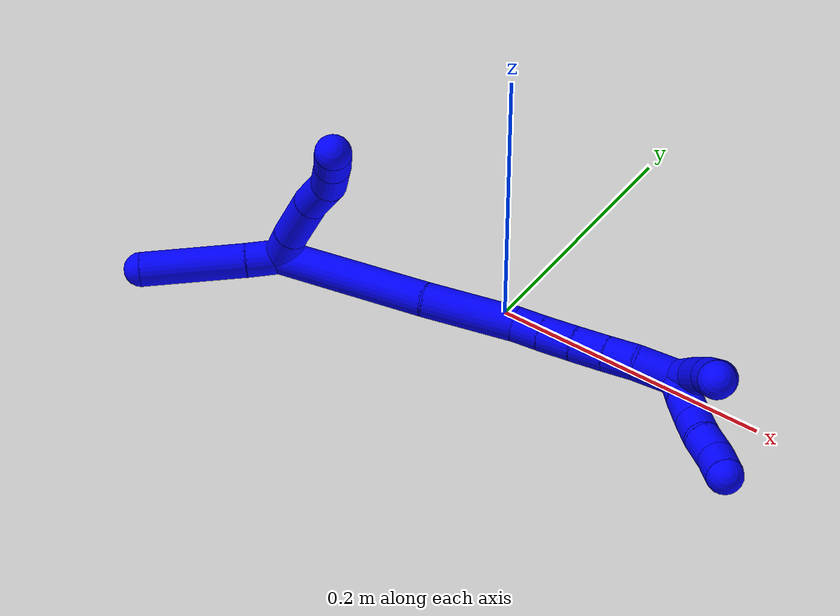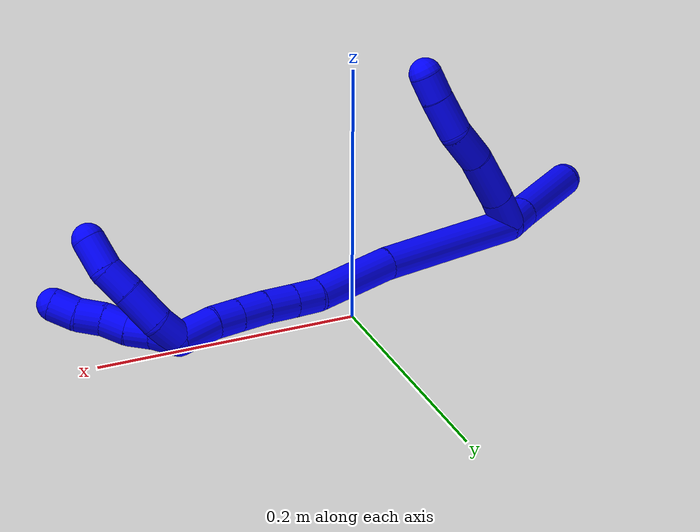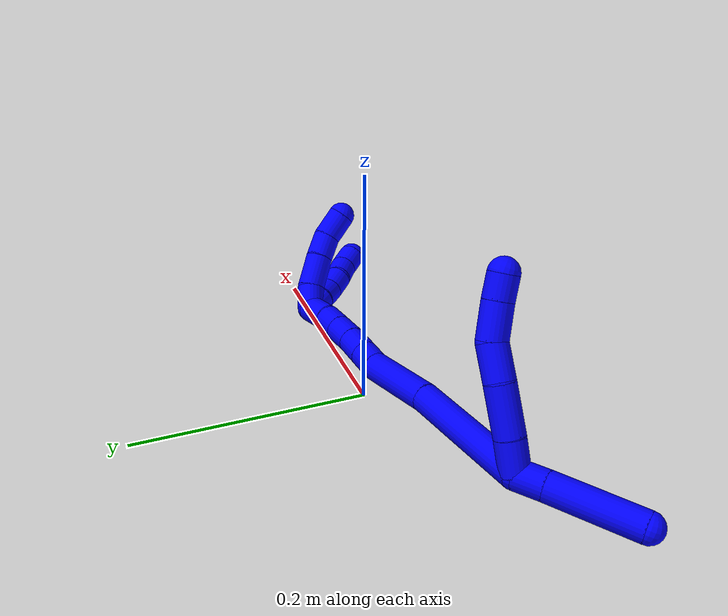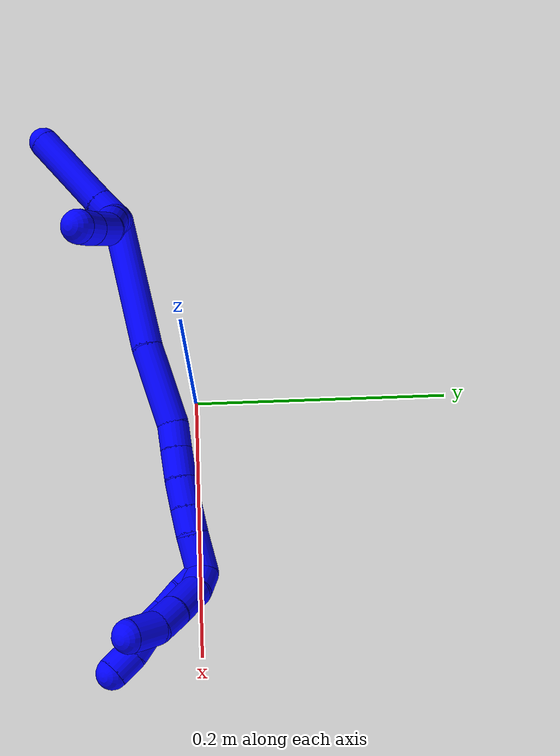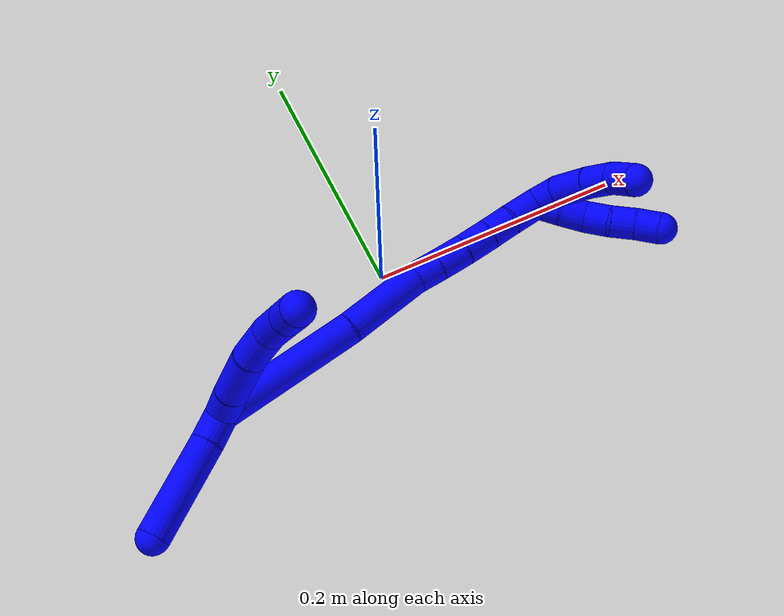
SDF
<sdf version="1.7">
 <world name="default">
  <model name="1">
   <static>0</static>
   <link name="1">
    <collision name="collision-cylinder-e_1_2_8">
     <pose>0.001639 0.006868 0.012306 -0.509071 0.11575 -0.030147</pose>
     <geometry><cylinder><radius>0.0125</radius><length>0.028375</length></cylinder></geometry>
     <surface>
      <friction><ode><mu>1.16</mu><mu2>1.16</mu2><slip1>0</slip1><slip2>0</slip2></ode></friction>
      <contact><ode><kp>1e+06</kp><kd>1</kd><max_vel>0</max_vel><min_depth>0.001</min_depth></ode></contact>
     </surface>
    </collision>
    <visual name="visual-cylinder-e_1_2_8">
     <pose>0.001639 0.006868 0.012306 -0.509071 0.11575 -0.030147</pose>
     <geometry><cylinder><radius>0.0125</radius><length>0.028375</length></cylinder></geometry>
     <material><ambient>0 0 1 1</ambient></material>
    </visual>
    <collision name="collision-cylinder-e_2_8_9">
     <pose>0.007035 0.02364 0.042337 -0.509504 0.183021 -0.047785</pose>
     <geometry><cylinder><radius>0.0125</radius><length>0.0413</length></cylinder></geometry>
     <surface>
      <friction><ode><mu>1.16</mu><mu2>1.16</mu2><slip1>0</slip1><slip2>0</slip2></ode></friction>
      <contact><ode><kp>1e+06</kp><kd>1</kd><max_vel>0</max_vel><min_depth>0.001</min_depth></ode></contact>
     </surface>
    </collision>
    <visual name="visual-cylinder-e_2_8_9">
     <pose>0.007035 0.02364 0.042337 -0.509504 0.183021 -0.047785</pose>
     <geometry><cylinder><radius>0.0125</radius><length>0.0413</length></cylinder></geometry>
     <material><ambient>0 0 1 1</ambient></material>
    </visual>
    <collision name="collision-cylinder-e_3_9_10">
     <pose>0.015413 0.039676 0.072849 -0.44719 0.314896 -0.072173</pose>
     <geometry><cylinder><radius>0.0125</radius><length>0.029828</length></cylinder></geometry>
     <surface>
      <friction><ode><mu>1.16</mu><mu2>1.16</mu2><slip1>0</slip1><slip2>0</slip2></ode></friction>
      <contact><ode><kp>1e+06</kp><kd>1</kd><max_vel>0</max_vel><min_depth>0.001</min_depth></ode></contact>
     </surface>
    </collision>
    <visual name="visual-cylinder-e_3_9_10">
     <pose>0.015413 0.039676 0.072849 -0.44719 0.314896 -0.072173</pose>
     <geometry><cylinder><radius>0.0125</radius><length>0.029828</length></cylinder></geometry>
     <material><ambient>0 0 1 1</ambient></material>
    </visual>
    <collision name="collision-cylinder-e_4_10_11">
     <pose>0.02132 0.0486 0.100367 -0.187309 0.08571 -0.008056</pose>
     <geometry><cylinder><radius>0.0125</radius><length>0.030099</length></cylinder></geometry>
     <surface>
      <friction><ode><mu>1.16</mu><mu2>1.16</mu2><slip1>0</slip1><slip2>0</slip2></ode></friction>
      <contact><ode><kp>1e+06</kp><kd>1</kd><max_vel>0</max_vel><min_depth>0.001</min_depth></ode></contact>
     </surface>
    </collision>
    <visual name="visual-cylinder-e_4_10_11">
     <pose>0.02132 0.0486 0.100367 -0.187309 0.08571 -0.008056</pose>
     <geometry><cylinder><radius>0.0125</radius><length>0.030099</length></cylinder></geometry>
     <material><ambient>0 0 1 1</ambient></material>
    </visual>
    <collision name="collision-cylinder-e_5_11_6">
     <pose>0.022838 0.053003 0.125168 -0.158618 0.022529 -0.001791</pose>
     <geometry><cylinder><radius>0.0125</radius><length>0.020398</length></cylinder></geometry>
     <surface>
      <friction><ode><mu>1.16</mu><mu2>1.16</mu2><slip1>0</slip1><slip2>0</slip2></ode></friction>
      <contact><ode><kp>1e+06</kp><kd>1</kd><max_vel>0</max_vel><min_depth>0.001</min_depth></ode></contact>
     </surface>
    </collision>
    <visual name="visual-cylinder-e_5_11_6">
     <pose>0.022838 0.053003 0.125168 -0.158618 0.022529 -0.001791</pose>
     <geometry><cylinder><radius>0.0125</radius><length>0.020398</length></cylinder></geometry>
     <material><ambient>0 0 1 1</ambient></material>
    </visual>
    <collision name="collision-cylinder-e_1_2_12">
     <pose>-0.009104 -0.007955 0.000461 1.51294 -0.851848 -0.80912</pose>
     <geometry><cylinder><radius>0.0125</radius><length>0.024197</length></cylinder></geometry>
     <surface>
      <friction><ode><mu>1.16</mu><mu2>1.16</mu2><slip1>0</slip1><slip2>0</slip2></ode></friction>
      <contact><ode><kp>1e+06</kp><kd>1</kd><max_vel>0</max_vel><min_depth>0.001</min_depth></ode></contact>
     </surface>
    </collision>
    <visual name="visual-cylinder-e_1_2_12">
     <pose>-0.009104 -0.007955 0.000461 1.51294 -0.851848 -0.80912</pose>
     <geometry><cylinder><radius>0.0125</radius><length>0.024197</length></cylinder></geometry>
     <material><ambient>0 0 1 1</ambient></material>
    </visual>
    <collision name="collision-cylinder-e_2_12_5">
     <pose>-0.047569 -0.03987 0.001497 1.5468 -0.886204 -0.867754</pose>
     <geometry><cylinder><radius>0.0125</radius><length>0.075803</length></cylinder></geometry>
     <surface>
      <friction><ode><mu>1.16</mu><mu2>1.16</mu2><slip1>0</slip1><slip2>0</slip2></ode></friction>
      <contact><ode><kp>1e+06</kp><kd>1</kd><max_vel>0</max_vel><min_depth>0.001</min_depth></ode></contact>
     </surface>
    </collision>
    <visual name="visual-cylinder-e_2_12_5">
     <pose>-0.047569 -0.03987 0.001497 1.5468 -0.886204 -0.867754</pose>
     <geometry><cylinder><radius>0.0125</radius><length>0.075803</length></cylinder></geometry>
     <material><ambient>0 0 1 1</ambient></material>
    </visual>
    <collision name="collision-cylinder-e_1_2_13">
     <pose>0.054178 0.013986 0.010826 -0.912072 1.25526 -0.683787</pose>
     <geometry><cylinder><radius>0.0125</radius><length>0.113983</length></cylinder></geometry>
     <surface>
      <friction><ode><mu>1.16</mu><mu2>1.16</mu2><slip1>0</slip1><slip2>0</slip2></ode></friction>
      <contact><ode><kp>1e+06</kp><kd>1</kd><max_vel>0</max_vel><min_depth>0.001</min_depth></ode></contact>
     </surface>
    </collision>
    <visual name="visual-cylinder-e_1_2_13">
     <pose>0.054178 0.013986 0.010826 -0.912072 1.25526 -0.683787</pose>
     <geometry><cylinder><radius>0.0125</radius><length>0.113983</length></cylinder></geometry>
     <material><ambient>0 0 1 1</ambient></material>
    </visual>
    <collision name="collision-cylinder-e_2_13_14">
     <pose>0.139994 0.037735 0.024725 -1.26583 1.25789 -0.980467</pose>
     <geometry><cylinder><radius>0.0125</radius><length>0.066505</length></cylinder></geometry>
     <surface>
      <friction><ode><mu>1.16</mu><mu2>1.16</mu2><slip1>0</slip1><slip2>0</slip2></ode></friction>
      <contact><ode><kp>1e+06</kp><kd>1</kd><max_vel>0</max_vel><min_depth>0.001</min_depth></ode></contact>
     </surface>
    </collision>
    <visual name="visual-cylinder-e_2_13_14">
     <pose>0.139994 0.037735 0.024725 -1.26583 1.25789 -0.980467</pose>
     <geometry><cylinder><radius>0.0125</radius><length>0.066505</length></cylinder></geometry>
     <material><ambient>0 0 1 1</ambient></material>
    </visual>
    <collision name="collision-cylinder-e_3_14_15">
     <pose>0.181547 0.049343 0.030476 -0.603149 1.25392 -0.443304</pose>
     <geometry><cylinder><radius>0.0125</radius><length>0.020869</length></cylinder></geometry>
     <surface>
      <friction><ode><mu>1.16</mu><mu2>1.16</mu2><slip1>0</slip1><slip2>0</slip2></ode></friction>
      <contact><ode><kp>1e+06</kp><kd>1</kd><max_vel>0</max_vel><min_depth>0.001</min_depth></ode></contact>
     </surface>
    </collision>
    <visual name="visual-cylinder-e_3_14_15">
     <pose>0.181547 0.049343 0.030476 -0.603149 1.25392 -0.443304</pose>
     <geometry><cylinder><radius>0.0125</radius><length>0.020869</length></cylinder></geometry>
     <material><ambient>0 0 1 1</ambient></material>
    </visual>
    <collision name="collision-cylinder-e_4_15_16">
     <pose>0.202755 0.053561 0.036363 -0.636906 1.23104 -0.458087</pose>
     <geometry><cylinder><radius>0.0125</radius><length>0.023958</length></cylinder></geometry>
     <surface>
      <friction><ode><mu>1.16</mu><mu2>1.16</mu2><slip1>0</slip1><slip2>0</slip2></ode></friction>
      <contact><ode><kp>1e+06</kp><kd>1</kd><max_vel>0</max_vel><min_depth>0.001</min_depth></ode></contact>
     </surface>
    </collision>
    <visual name="visual-cylinder-e_4_15_16">
     <pose>0.202755 0.053561 0.036363 -0.636906 1.23104 -0.458087</pose>
     <geometry><cylinder><radius>0.0125</radius><length>0.023958</length></cylinder></geometry>
     <material><ambient>0 0 1 1</ambient></material>
    </visual>
    <collision name="collision-cylinder-e_5_16_17">
     <pose>0.225191 0.058599 0.041999 -0.831969 1.25803 -0.622004</pose>
     <geometry><cylinder><radius>0.0125</radius><length>0.02342</length></cylinder></geometry>
     <surface>
      <friction><ode><mu>1.16</mu><mu2>1.16</mu2><slip1>0</slip1><slip2>0</slip2></ode></friction>
      <contact><ode><kp>1e+06</kp><kd>1</kd><max_vel>0</max_vel><min_depth>0.001</min_depth></ode></contact>
     </surface>
    </collision>
    <visual name="visual-cylinder-e_5_16_17">
     <pose>0.225191 0.058599 0.041999 -0.831969 1.25803 -0.622004</pose>
     <geometry><cylinder><radius>0.0125</radius><length>0.02342</length></cylinder></geometry>
     <material><ambient>0 0 1 1</ambient></material>
    </visual>
    <collision name="collision-cylinder-e_6_17_18">
     <pose>0.246286 0.063831 0.046574 -0.874297 1.24622 -0.647952</pose>
     <geometry><cylinder><radius>0.0125</radius><length>0.021003</length></cylinder></geometry>
     <surface>
      <friction><ode><mu>1.16</mu><mu2>1.16</mu2><slip1>0</slip1><slip2>0</slip2></ode></friction>
      <contact><ode><kp>1e+06</kp><kd>1</kd><max_vel>0</max_vel><min_depth>0.001</min_depth></ode></contact>
     </surface>
    </collision>
    <visual name="visual-cylinder-e_6_17_18">
     <pose>0.246286 0.063831 0.046574 -0.874297 1.24622 -0.647952</pose>
     <geometry><cylinder><radius>0.0125</radius><length>0.021003</length></cylinder></geometry>
     <material><ambient>0 0 1 1</ambient></material>
    </visual>
    <collision name="collision-cylinder-e_7_18_1">
     <pose>0.271007 0.069568 0.049634 -1.29063 1.35116 -1.0857</pose>
     <geometry><cylinder><radius>0.0125</radius><length>0.030263</length></cylinder></geometry>
     <surface>
      <friction><ode><mu>1.16</mu><mu2>1.16</mu2><slip1>0</slip1><slip2>0</slip2></ode></friction>
      <contact><ode><kp>1e+06</kp><kd>1</kd><max_vel>0</max_vel><min_depth>0.001</min_depth></ode></contact>
     </surface>
    </collision>
    <visual name="visual-cylinder-e_7_18_1">
     <pose>0.271007 0.069568 0.049634 -1.29063 1.35116 -1.0857</pose>
     <geometry><cylinder><radius>0.0125</radius><length>0.030263</length></cylinder></geometry>
     <material><ambient>0 0 1 1</ambient></material>
    </visual>
    <collision name="collision-cylinder-e_1_1_19">
     <pose>0.291535 0.06699 0.056359 0.779637 0.61378 0.258937</pose>
     <geometry><cylinder><radius>0.0125</radius><length>0.02</length></cylinder></geometry>
     <surface>
      <friction><ode><mu>1.16</mu><mu2>1.16</mu2><slip1>0</slip1><slip2>0</slip2></ode></friction>
      <contact><ode><kp>1e+06</kp><kd>1</kd><max_vel>0</max_vel><min_depth>0.001</min_depth></ode></contact>
     </surface>
    </collision>
    <visual name="visual-cylinder-e_1_1_19">
     <pose>0.291535 0.06699 0.056359 0.779637 0.61378 0.258937</pose>
     <geometry><cylinder><radius>0.0125</radius><length>0.02</length></cylinder></geometry>
     <material><ambient>0 0 1 1</ambient></material>
    </visual>
    <collision name="collision-cylinder-e_2_19_20">
     <pose>0.30391 0.055645 0.067163 0.842648 0.722859 0.335655</pose>
     <geometry><cylinder><radius>0.0125</radius><length>0.02</length></cylinder></geometry>
     <surface>
      <friction><ode><mu>1.16</mu><mu2>1.16</mu2><slip1>0</slip1><slip2>0</slip2></ode></friction>
      <contact><ode><kp>1e+06</kp><kd>1</kd><max_vel>0</max_vel><min_depth>0.001</min_depth></ode></contact>
     </surface>
    </collision>
    <visual name="visual-cylinder-e_2_19_20">
     <pose>0.30391 0.055645 0.067163 0.842648 0.722859 0.335655</pose>
     <geometry><cylinder><radius>0.0125</radius><length>0.02</length></cylinder></geometry>
     <material><ambient>0 0 1 1</ambient></material>
    </visual>
    <collision name="collision-cylinder-e_3_20_21">
     <pose>0.315986 0.045318 0.079068 0.599911 0.577697 0.1833</pose>
     <geometry><cylinder><radius>0.0125</radius><length>0.02</length></cylinder></geometry>
     <surface>
      <friction><ode><mu>1.16</mu><mu2>1.16</mu2><slip1>0</slip1><slip2>0</slip2></ode></friction>
      <contact><ode><kp>1e+06</kp><kd>1</kd><max_vel>0</max_vel><min_depth>0.001</min_depth></ode></contact>
     </surface>
    </collision>
    <visual name="visual-cylinder-e_3_20_21">
     <pose>0.315986 0.045318 0.079068 0.599911 0.577697 0.1833</pose>
     <geometry><cylinder><radius>0.0125</radius><length>0.02</length></cylinder></geometry>
     <material><ambient>0 0 1 1</ambient></material>
    </visual>
    <collision name="collision-cylinder-e_4_21_22">
     <pose>0.32856 0.036402 0.091629 0.638003 0.791345 0.274188</pose>
     <geometry><cylinder><radius>0.0125</radius><length>0.02</length></cylinder></geometry>
     <surface>
      <friction><ode><mu>1.16</mu><mu2>1.16</mu2><slip1>0</slip1><slip2>0</slip2></ode></friction>
      <contact><ode><kp>1e+06</kp><kd>1</kd><max_vel>0</max_vel><min_depth>0.001</min_depth></ode></contact>
     </surface>
    </collision>
    <visual name="visual-cylinder-e_4_21_22">
     <pose>0.32856 0.036402 0.091629 0.638003 0.791345 0.274188</pose>
     <geometry><cylinder><radius>0.0125</radius><length>0.02</length></cylinder></geometry>
     <material><ambient>0 0 1 1</ambient></material>
    </visual>
    <collision name="collision-cylinder-e_5_22_4">
     <pose>0.341027 0.027567 0.104326 0.582856 0.565049 0.173717</pose>
     <geometry><cylinder><radius>0.0125</radius><length>0.02</length></cylinder></geometry>
     <surface>
      <friction><ode><mu>1.16</mu><mu2>1.16</mu2><slip1>0</slip1><slip2>0</slip2></ode></friction>
      <contact><ode><kp>1e+06</kp><kd>1</kd><max_vel>0</max_vel><min_depth>0.001</min_depth></ode></contact>
     </surface>
    </collision>
    <visual name="visual-cylinder-e_5_22_4">
     <pose>0.341027 0.027567 0.104326 0.582856 0.565049 0.173717</pose>
     <geometry><cylinder><radius>0.0125</radius><length>0.02</length></cylinder></geometry>
     <material><ambient>0 0 1 1</ambient></material>
    </visual>
    <collision name="collision-cylinder-e_1_1_23">
     <pose>0.290469 0.074421 0.060008 -0.176147 0.454321 -0.040816</pose>
     <geometry><cylinder><radius>0.0125</radius><length>0.021392</length></cylinder></geometry>
     <surface>
      <friction><ode><mu>1.16</mu><mu2>1.16</mu2><slip1>0</slip1><slip2>0</slip2></ode></friction>
      <contact><ode><kp>1e+06</kp><kd>1</kd><max_vel>0</max_vel><min_depth>0.001</min_depth></ode></contact>
     </surface>
    </collision>
    <visual name="visual-cylinder-e_1_1_23">
     <pose>0.290469 0.074421 0.060008 -0.176147 0.454321 -0.040816</pose>
     <geometry><cylinder><radius>0.0125</radius><length>0.021392</length></cylinder></geometry>
     <material><ambient>0 0 1 1</ambient></material>
    </visual>
    <collision name="collision-cylinder-e_2_23_24">
     <pose>0.299482 0.075286 0.083963 0.056443 0.289151 0.00822</pose>
     <geometry><cylinder><radius>0.0125</radius><length>0.030291</length></cylinder></geometry>
     <surface>
      <friction><ode><mu>1.16</mu><mu2>1.16</mu2><slip1>0</slip1><slip2>0</slip2></ode></friction>
      <contact><ode><kp>1e+06</kp><kd>1</kd><max_vel>0</max_vel><min_depth>0.001</min_depth></ode></contact>
     </surface>
    </collision>
    <visual name="visual-cylinder-e_2_23_24">
     <pose>0.299482 0.075286 0.083963 0.056443 0.289151 0.00822</pose>
     <geometry><cylinder><radius>0.0125</radius><length>0.030291</length></cylinder></geometry>
     <material><ambient>0 0 1 1</ambient></material>
    </visual>
    <collision name="collision-cylinder-e_3_24_25">
     <pose>0.307174 0.072934 0.109227 0.141424 0.300715 0.021461</pose>
     <geometry><cylinder><radius>0.0125</radius><length>0.02278</length></cylinder></geometry>
     <surface>
      <friction><ode><mu>1.16</mu><mu2>1.16</mu2><slip1>0</slip1><slip2>0</slip2></ode></friction>
      <contact><ode><kp>1e+06</kp><kd>1</kd><max_vel>0</max_vel><min_depth>0.001</min_depth></ode></contact>
     </surface>
    </collision>
    <visual name="visual-cylinder-e_3_24_25">
     <pose>0.307174 0.072934 0.109227 0.141424 0.300715 0.021461</pose>
     <geometry><cylinder><radius>0.0125</radius><length>0.02278</length></cylinder></geometry>
     <material><ambient>0 0 1 1</ambient></material>
    </visual>
    <collision name="collision-cylinder-e_4_25_3">
     <pose>0.310449 0.067881 0.132271 0.27924 -0.007765 -0.001091</pose>
     <geometry><cylinder><radius>0.0125</radius><length>0.025537</length></cylinder></geometry>
     <surface>
      <friction><ode><mu>1.16</mu><mu2>1.16</mu2><slip1>0</slip1><slip2>0</slip2></ode></friction>
      <contact><ode><kp>1e+06</kp><kd>1</kd><max_vel>0</max_vel><min_depth>0.001</min_depth></ode></contact>
     </surface>
    </collision>
    <visual name="visual-cylinder-e_4_25_3">
     <pose>0.310449 0.067881 0.132271 0.27924 -0.007765 -0.001091</pose>
     <geometry><cylinder><radius>0.0125</radius><length>0.025537</length></cylinder></geometry>
     <material><ambient>0 0 1 1</ambient></material>
    </visual>
    <collision name="collision-sphere-3">
     <pose>0.310349 0.064362 0.144545 0 -0 0</pose>
     <geometry><sphere><radius>0.0125</radius></sphere></geometry>
     <surface>
      <friction><ode><mu>1.16</mu><mu2>1.16</mu2><slip1>0</slip1><slip2>0</slip2></ode></friction>
      <contact><ode><kp>1e+06</kp><kd>1</kd><max_vel>0</max_vel><min_depth>0.001</min_depth></ode></contact>
     </surface>
    </collision>
    <visual name="visual-sphere-3">
     <pose>0.310349 0.064362 0.144545 0 -0 0</pose>
     <geometry><sphere><radius>0.0125</radius></sphere></geometry>
     <material><ambient>0 0 1 1</ambient></material>
    </visual>
    <collision name="collision-sphere-25">
     <pose>0.310548 0.0714 0.119997 0 -0 0</pose>
     <geometry><sphere><radius>0.0125</radius></sphere></geometry>
     <surface>
      <friction><ode><mu>1.16</mu><mu2>1.16</mu2><slip1>0</slip1><slip2>0</slip2></ode></friction>
      <contact><ode><kp>1e+06</kp><kd>1</kd><max_vel>0</max_vel><min_depth>0.001</min_depth></ode></contact>
     </surface>
    </collision>
    <visual name="visual-sphere-25">
     <pose>0.310548 0.0714 0.119997 0 -0 0</pose>
     <geometry><sphere><radius>0.0125</radius></sphere></geometry>
     <material><ambient>0 0 1 1</ambient></material>
    </visual>
    <collision name="collision-sphere-24">
     <pose>0.3038 0.074467 0.098457 0 -0 0</pose>
     <geometry><sphere><radius>0.0125</radius></sphere></geometry>
     <surface>
      <friction><ode><mu>1.16</mu><mu2>1.16</mu2><slip1>0</slip1><slip2>0</slip2></ode></friction>
      <contact><ode><kp>1e+06</kp><kd>1</kd><max_vel>0</max_vel><min_depth>0.001</min_depth></ode></contact>
     </surface>
    </collision>
    <visual name="visual-sphere-24">
     <pose>0.3038 0.074467 0.098457 0 -0 0</pose>
     <geometry><sphere><radius>0.0125</radius></sphere></geometry>
     <material><ambient>0 0 1 1</ambient></material>
    </visual>
    <collision name="collision-sphere-23">
     <pose>0.295163 0.076105 0.06947 0 -0 0</pose>
     <geometry><sphere><radius>0.0125</radius></sphere></geometry>
     <surface>
      <friction><ode><mu>1.16</mu><mu2>1.16</mu2><slip1>0</slip1><slip2>0</slip2></ode></friction>
      <contact><ode><kp>1e+06</kp><kd>1</kd><max_vel>0</max_vel><min_depth>0.001</min_depth></ode></contact>
     </surface>
    </collision>
    <visual name="visual-sphere-23">
     <pose>0.295163 0.076105 0.06947 0 -0 0</pose>
     <geometry><sphere><radius>0.0125</radius></sphere></geometry>
     <material><ambient>0 0 1 1</ambient></material>
    </visual>
    <collision name="collision-sphere-4">
     <pose>0.346382 0.022919 0.111377 0 -0 0</pose>
     <geometry><sphere><radius>0.0125</radius></sphere></geometry>
     <surface>
      <friction><ode><mu>1.16</mu><mu2>1.16</mu2><slip1>0</slip1><slip2>0</slip2></ode></friction>
      <contact><ode><kp>1e+06</kp><kd>1</kd><max_vel>0</max_vel><min_depth>0.001</min_depth></ode></contact>
     </surface>
    </collision>
    <visual name="visual-sphere-4">
     <pose>0.346382 0.022919 0.111377 0 -0 0</pose>
     <geometry><sphere><radius>0.0125</radius></sphere></geometry>
     <material><ambient>0 0 1 1</ambient></material>
    </visual>
    <collision name="collision-sphere-22">
     <pose>0.335673 0.032216 0.097275 0 -0 0</pose>
     <geometry><sphere><radius>0.0125</radius></sphere></geometry>
     <surface>
      <friction><ode><mu>1.16</mu><mu2>1.16</mu2><slip1>0</slip1><slip2>0</slip2></ode></friction>
      <contact><ode><kp>1e+06</kp><kd>1</kd><max_vel>0</max_vel><min_depth>0.001</min_depth></ode></contact>
     </surface>
    </collision>
    <visual name="visual-sphere-22">
     <pose>0.335673 0.032216 0.097275 0 -0 0</pose>
     <geometry><sphere><radius>0.0125</radius></sphere></geometry>
     <material><ambient>0 0 1 1</ambient></material>
    </visual>
    <collision name="collision-sphere-21">
     <pose>0.321447 0.040589 0.085983 0 -0 0</pose>
     <geometry><sphere><radius>0.0125</radius></sphere></geometry>
     <surface>
      <friction><ode><mu>1.16</mu><mu2>1.16</mu2><slip1>0</slip1><slip2>0</slip2></ode></friction>
      <contact><ode><kp>1e+06</kp><kd>1</kd><max_vel>0</max_vel><min_depth>0.001</min_depth></ode></contact>
     </surface>
    </collision>
    <visual name="visual-sphere-21">
     <pose>0.321447 0.040589 0.085983 0 -0 0</pose>
     <geometry><sphere><radius>0.0125</radius></sphere></geometry>
     <material><ambient>0 0 1 1</ambient></material>
    </visual>
    <collision name="collision-sphere-20">
     <pose>0.310525 0.050048 0.072154 0 -0 0</pose>
     <geometry><sphere><radius>0.0125</radius></sphere></geometry>
     <surface>
      <friction><ode><mu>1.16</mu><mu2>1.16</mu2><slip1>0</slip1><slip2>0</slip2></ode></friction>
      <contact><ode><kp>1e+06</kp><kd>1</kd><max_vel>0</max_vel><min_depth>0.001</min_depth></ode></contact>
     </surface>
    </collision>
    <visual name="visual-sphere-20">
     <pose>0.310525 0.050048 0.072154 0 -0 0</pose>
     <geometry><sphere><radius>0.0125</radius></sphere></geometry>
     <material><ambient>0 0 1 1</ambient></material>
    </visual>
    <collision name="collision-sphere-6">
     <pose>0.023068 0.054614 0.135237 0 -0 0</pose>
     <geometry><sphere><radius>0.0125</radius></sphere></geometry>
     <surface>
      <friction><ode><mu>1.16</mu><mu2>1.16</mu2><slip1>0</slip1><slip2>0</slip2></ode></friction>
      <contact><ode><kp>1e+06</kp><kd>1</kd><max_vel>0</max_vel><min_depth>0.001</min_depth></ode></contact>
     </surface>
    </collision>
    <visual name="visual-sphere-6">
     <pose>0.023068 0.054614 0.135237 0 -0 0</pose>
     <geometry><sphere><radius>0.0125</radius></sphere></geometry>
     <material><ambient>0 0 1 1</ambient></material>
    </visual>
    <collision name="collision-sphere-11">
     <pose>0.022608 0.051392 0.115099 0 -0 0</pose>
     <geometry><sphere><radius>0.0125</radius></sphere></geometry>
     <surface>
      <friction><ode><mu>1.16</mu><mu2>1.16</mu2><slip1>0</slip1><slip2>0</slip2></ode></friction>
      <contact><ode><kp>1e+06</kp><kd>1</kd><max_vel>0</max_vel><min_depth>0.001</min_depth></ode></contact>
     </surface>
    </collision>
    <visual name="visual-sphere-11">
     <pose>0.022608 0.051392 0.115099 0 -0 0</pose>
     <geometry><sphere><radius>0.0125</radius></sphere></geometry>
     <material><ambient>0 0 1 1</ambient></material>
    </visual>
    <collision name="collision-sphere-10">
     <pose>0.020032 0.045808 0.085635 0 -0 0</pose>
     <geometry><sphere><radius>0.0125</radius></sphere></geometry>
     <surface>
      <friction><ode><mu>1.16</mu><mu2>1.16</mu2><slip1>0</slip1><slip2>0</slip2></ode></friction>
      <contact><ode><kp>1e+06</kp><kd>1</kd><max_vel>0</max_vel><min_depth>0.001</min_depth></ode></contact>
     </surface>
    </collision>
    <visual name="visual-sphere-10">
     <pose>0.020032 0.045808 0.085635 0 -0 0</pose>
     <geometry><sphere><radius>0.0125</radius></sphere></geometry>
     <material><ambient>0 0 1 1</ambient></material>
    </visual>
    <collision name="collision-sphere-9">
     <pose>0.010794 0.033544 0.060063 0 -0 0</pose>
     <geometry><sphere><radius>0.0125</radius></sphere></geometry>
     <surface>
      <friction><ode><mu>1.16</mu><mu2>1.16</mu2><slip1>0</slip1><slip2>0</slip2></ode></friction>
      <contact><ode><kp>1e+06</kp><kd>1</kd><max_vel>0</max_vel><min_depth>0.001</min_depth></ode></contact>
     </surface>
    </collision>
    <visual name="visual-sphere-9">
     <pose>0.010794 0.033544 0.060063 0 -0 0</pose>
     <geometry><sphere><radius>0.0125</radius></sphere></geometry>
     <material><ambient>0 0 1 1</ambient></material>
    </visual>
    <collision name="collision-sphere-2">
     <geometry><sphere><radius>0.0125</radius></sphere></geometry>
     <surface>
      <friction><ode><mu>1.16</mu><mu2>1.16</mu2><slip1>0</slip1><slip2>0</slip2></ode></friction>
      <contact><ode><kp>1e+06</kp><kd>1</kd><max_vel>0</max_vel><min_depth>0.001</min_depth></ode></contact>
     </surface>
    </collision>
    <visual name="visual-sphere-2">
     <geometry><sphere><radius>0.0125</radius></sphere></geometry>
     <material><ambient>0 0 1 1</ambient></material>
    </visual>
    <collision name="collision-sphere-19">
     <pose>0.297294 0.061243 0.062173 0 -0 0</pose>
     <geometry><sphere><radius>0.0125</radius></sphere></geometry>
     <surface>
      <friction><ode><mu>1.16</mu><mu2>1.16</mu2><slip1>0</slip1><slip2>0</slip2></ode></friction>
      <contact><ode><kp>1e+06</kp><kd>1</kd><max_vel>0</max_vel><min_depth>0.001</min_depth></ode></contact>
     </surface>
    </collision>
    <visual name="visual-sphere-19">
     <pose>0.297294 0.061243 0.062173 0 -0 0</pose>
     <geometry><sphere><radius>0.0125</radius></sphere></geometry>
     <material><ambient>0 0 1 1</ambient></material>
    </visual>
    <collision name="collision-sphere-8">
     <pose>0.003277 0.013736 0.024611 0 -0 0</pose>
     <geometry><sphere><radius>0.0125</radius></sphere></geometry>
     <surface>
      <friction><ode><mu>1.16</mu><mu2>1.16</mu2><slip1>0</slip1><slip2>0</slip2></ode></friction>
      <contact><ode><kp>1e+06</kp><kd>1</kd><max_vel>0</max_vel><min_depth>0.001</min_depth></ode></contact>
     </surface>
    </collision>
    <visual name="visual-sphere-8">
     <pose>0.003277 0.013736 0.024611 0 -0 0</pose>
     <geometry><sphere><radius>0.0125</radius></sphere></geometry>
     <material><ambient>0 0 1 1</ambient></material>
    </visual>
    <collision name="collision-sphere-12">
     <pose>-0.018208 -0.015909 0.000921 0 -0 0</pose>
     <geometry><sphere><radius>0.0125</radius></sphere></geometry>
     <surface>
      <friction><ode><mu>1.16</mu><mu2>1.16</mu2><slip1>0</slip1><slip2>0</slip2></ode></friction>
      <contact><ode><kp>1e+06</kp><kd>1</kd><max_vel>0</max_vel><min_depth>0.001</min_depth></ode></contact>
     </surface>
    </collision>
    <visual name="visual-sphere-12">
     <pose>-0.018208 -0.015909 0.000921 0 -0 0</pose>
     <geometry><sphere><radius>0.0125</radius></sphere></geometry>
     <material><ambient>0 0 1 1</ambient></material>
    </visual>
    <collision name="collision-sphere-5">
     <pose>-0.076931 -0.06383 0.002072 0 -0 0</pose>
     <geometry><sphere><radius>0.0125</radius></sphere></geometry>
     <surface>
      <friction><ode><mu>1.16</mu><mu2>1.16</mu2><slip1>0</slip1><slip2>0</slip2></ode></friction>
      <contact><ode><kp>1e+06</kp><kd>1</kd><max_vel>0</max_vel><min_depth>0.001</min_depth></ode></contact>
     </surface>
    </collision>
    <visual name="visual-sphere-5">
     <pose>-0.076931 -0.06383 0.002072 0 -0 0</pose>
     <geometry><sphere><radius>0.0125</radius></sphere></geometry>
     <material><ambient>0 0 1 1</ambient></material>
    </visual>
    <collision name="collision-sphere-13">
     <pose>0.108356 0.027971 0.021652 0 -0 0</pose>
     <geometry><sphere><radius>0.0125</radius></sphere></geometry>
     <surface>
      <friction><ode><mu>1.16</mu><mu2>1.16</mu2><slip1>0</slip1><slip2>0</slip2></ode></friction>
      <contact><ode><kp>1e+06</kp><kd>1</kd><max_vel>0</max_vel><min_depth>0.001</min_depth></ode></contact>
     </surface>
    </collision>
    <visual name="visual-sphere-13">
     <pose>0.108356 0.027971 0.021652 0 -0 0</pose>
     <geometry><sphere><radius>0.0125</radius></sphere></geometry>
     <material><ambient>0 0 1 1</ambient></material>
    </visual>
    <collision name="collision-sphere-14">
     <pose>0.171632 0.047498 0.027798 0 -0 0</pose>
     <geometry><sphere><radius>0.0125</radius></sphere></geometry>
     <surface>
      <friction><ode><mu>1.16</mu><mu2>1.16</mu2><slip1>0</slip1><slip2>0</slip2></ode></friction>
      <contact><ode><kp>1e+06</kp><kd>1</kd><max_vel>0</max_vel><min_depth>0.001</min_depth></ode></contact>
     </surface>
    </collision>
    <visual name="visual-sphere-14">
     <pose>0.171632 0.047498 0.027798 0 -0 0</pose>
     <geometry><sphere><radius>0.0125</radius></sphere></geometry>
     <material><ambient>0 0 1 1</ambient></material>
    </visual>
    <collision name="collision-sphere-15">
     <pose>0.191461 0.051187 0.033154 0 -0 0</pose>
     <geometry><sphere><radius>0.0125</radius></sphere></geometry>
     <surface>
      <friction><ode><mu>1.16</mu><mu2>1.16</mu2><slip1>0</slip1><slip2>0</slip2></ode></friction>
      <contact><ode><kp>1e+06</kp><kd>1</kd><max_vel>0</max_vel><min_depth>0.001</min_depth></ode></contact>
     </surface>
    </collision>
    <visual name="visual-sphere-15">
     <pose>0.191461 0.051187 0.033154 0 -0 0</pose>
     <geometry><sphere><radius>0.0125</radius></sphere></geometry>
     <material><ambient>0 0 1 1</ambient></material>
    </visual>
    <collision name="collision-sphere-16">
     <pose>0.214049 0.055935 0.039572 0 -0 0</pose>
     <geometry><sphere><radius>0.0125</radius></sphere></geometry>
     <surface>
      <friction><ode><mu>1.16</mu><mu2>1.16</mu2><slip1>0</slip1><slip2>0</slip2></ode></friction>
      <contact><ode><kp>1e+06</kp><kd>1</kd><max_vel>0</max_vel><min_depth>0.001</min_depth></ode></contact>
     </surface>
    </collision>
    <visual name="visual-sphere-16">
     <pose>0.214049 0.055935 0.039572 0 -0 0</pose>
     <geometry><sphere><radius>0.0125</radius></sphere></geometry>
     <material><ambient>0 0 1 1</ambient></material>
    </visual>
    <collision name="collision-sphere-17">
     <pose>0.236333 0.061262 0.044425 0 -0 0</pose>
     <geometry><sphere><radius>0.0125</radius></sphere></geometry>
     <surface>
      <friction><ode><mu>1.16</mu><mu2>1.16</mu2><slip1>0</slip1><slip2>0</slip2></ode></friction>
      <contact><ode><kp>1e+06</kp><kd>1</kd><max_vel>0</max_vel><min_depth>0.001</min_depth></ode></contact>
     </surface>
    </collision>
    <visual name="visual-sphere-17">
     <pose>0.236333 0.061262 0.044425 0 -0 0</pose>
     <geometry><sphere><radius>0.0125</radius></sphere></geometry>
     <material><ambient>0 0 1 1</ambient></material>
    </visual>
    <collision name="collision-sphere-18">
     <pose>0.256239 0.0664 0.048722 0 -0 0</pose>
     <geometry><sphere><radius>0.0125</radius></sphere></geometry>
     <surface>
      <friction><ode><mu>1.16</mu><mu2>1.16</mu2><slip1>0</slip1><slip2>0</slip2></ode></friction>
      <contact><ode><kp>1e+06</kp><kd>1</kd><max_vel>0</max_vel><min_depth>0.001</min_depth></ode></contact>
     </surface>
    </collision>
    <visual name="visual-sphere-18">
     <pose>0.256239 0.0664 0.048722 0 -0 0</pose>
     <geometry><sphere><radius>0.0125</radius></sphere></geometry>
     <material><ambient>0 0 1 1</ambient></material>
    </visual>
    <collision name="collision-sphere-1">
     <pose>0.285775 0.072737 0.050545 0 -0 0</pose>
     <geometry><sphere><radius>0.0125</radius></sphere></geometry>
     <surface>
      <friction><ode><mu>1.16</mu><mu2>1.16</mu2><slip1>0</slip1><slip2>0</slip2></ode></friction>
      <contact><ode><kp>1e+06</kp><kd>1</kd><max_vel>0</max_vel><min_depth>0.001</min_depth></ode></contact>
     </surface>
    </collision>
    <visual name="visual-sphere-1">
     <pose>0.285775 0.072737 0.050545 0 -0 0</pose>
     <geometry><sphere><radius>0.0125</radius></sphere></geometry>
     <material><ambient>0 0 1 1</ambient></material>
    </visual>
    <inertial>
     <pose>0.136919 0.0331 0.04731 0 -0 0</pose>
     <mass>0.75</mass>
     <inertia>
      <ixx>5.9e-05</ixx>
      <ixy>0</ixy>
      <ixz>0</ixz>
      <iyy>0.000162</iyy>
      <iyz>0</iyz>
      <izz>-0.000127</izz>
     </inertia>
    </inertial>
   </link>
   <pose>-0.154948 -0.060191 0.017368 0.507242 0.291212 0.079836</pose>
  </model>
 </world>
</sdf>
